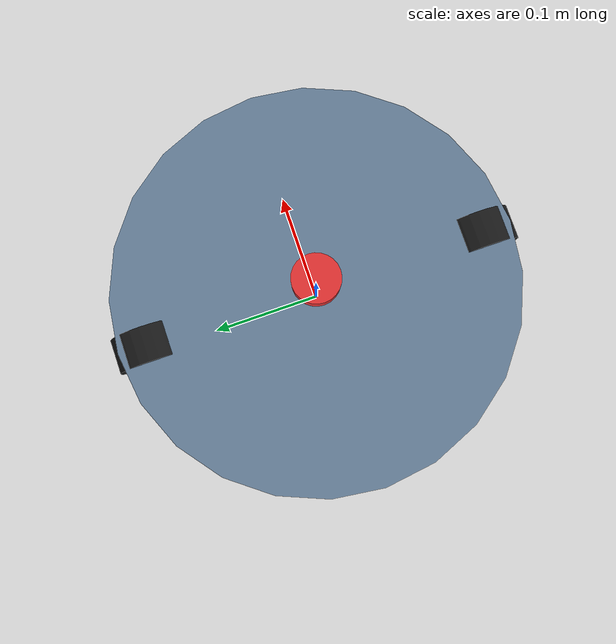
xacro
<?xml version="1.0"?>
<!--
  vacuum.urdf.xacro — Robot vacuum, 349mm round body, diff drive, 2D LiDAR.
  Frames follow REP-103: x forward, y left, z up.
  base_link origin at floor plane center; base_footprint planar frame.
-->
<robot name="vacuum" xmlns:xacro="http://www.ros.org/wiki/xacro">

  <!-- ============ Macro: wheels (used twice) ============ -->
  <xacro:macro name="vacuum_wheel" params="prefix x y">
    <link name="${prefix}_wheel">
      <visual>
        <geometry><cylinder radius="0.033" length="0.030"/></geometry>
        <origin rpy="0 ${pi/2} 0" xyz="0 0 0"/>
        <material name="black"/>
      </visual>
      <collision>
        <geometry><cylinder radius="0.033" length="0.030"/></geometry>
        <origin rpy="0 ${pi/2} 0" xyz="0 0 0"/>
      </collision>
    </link>
    <joint name="${prefix}_wheel_joint" type="continuous">
      <parent link="base_link"/>
      <child link="${prefix}_wheel"/>
      <origin xyz="${x} ${y} 0.033" rpy="0 0 0"/>
      <axis xyz="0 1 0"/>
    </joint>
  </xacro:macro>

  <!-- ============ Base footprint ============ -->
  <link name="base_footprint"/>
  <joint name="base_footprint_joint" type="fixed">
    <parent link="base_footprint"/>
    <child link="base_link"/>
    <origin xyz="0 0 0.02" rpy="0 0 0"/>
  </joint>

  <!-- ============ Body: 349mm round, ~60mm tall ============ -->
  <link name="base_link">
    <visual>
      <geometry><cylinder radius="0.1745" length="0.060"/></geometry>
      <origin rpy="0 0 0" xyz="0 0 0.03"/>
      <material name="body"/>
    </visual>
    <collision>
      <geometry><cylinder radius="0.1745" length="0.060"/></geometry>
      <origin rpy="0 0 0" xyz="0 0 0.03"/>
    </collision>
    <inertial>
      <mass value="3.0"/>
      <inertia ixx="0.02" iyy="0.02" izz="0.03" ixy="0.0" ixz="0.0" iyz="0.0"/>
      <origin xyz="0 0 0.03"/>
    </inertial>
  </link>

  <!-- ============ Drive wheels (x = +/-0.12 front-back, y = +/-0.15) ============ -->
  <xacro:vacuum_wheel prefix="left"  x="0.0"  y="0.15"/>
  <xacro:vacuum_wheel prefix="right" x="0.0"  y="-0.15"/>

  <!-- Caster (free spinning, just a sphere for sim contact) -->
  <link name="caster_wheel">
    <visual>
      <geometry><sphere radius="0.02"/></geometry>
      <origin rpy="0 0 0" xyz="0 0 0.02"/>
      <material name="black"/>
    </visual>
    <collision>
      <geometry><sphere radius="0.02"/></geometry>
      <origin rpy="0 0 0" xyz="0 0 0.02"/>
    </collision>
  </link>
  <joint name="caster_joint" type="fixed">
    <parent link="base_link"/>
    <child link="caster_wheel"/>
    <origin xyz="-0.12 0 0.0" rpy="0 0 0"/>
  </joint>

  <!-- ============ 2D LiDAR on top (base_scan) ============ -->
  <link name="base_scan">
    <visual>
      <geometry><cylinder radius="0.02" length="0.02"/></geometry>
      <origin rpy="0 0 0" xyz="0 0 0.01"/>
      <material name="lidar"/>
    </visual>
  </link>
  <joint name="base_scan_joint" type="fixed">
    <parent link="base_link"/>
    <child link="base_scan"/>
    <origin xyz="0 0 0.09" rpy="0 0 0"/>
  </joint>

  <!-- ============ Cliff / bumper placeholders (visual only, sim contacts later) ============ -->
  <link name="bumper_front"/>
  <joint name="bumper_front_joint" type="fixed">
    <parent link="base_link"/>
    <child link="bumper_front"/>
    <origin xyz="0.15 0 0.02" rpy="0 0 0"/>
  </joint>

  <!-- ============ Gazebo plugins ============ -->
  <gazebo reference="base_link">
    <material>Gazebo/DarkGrey</material>
    <mu1>0.8</mu1>
    <mu2>0.8</mu2>
  </gazebo>
  <gazebo reference="left_wheel">
    <mu1>1.0</mu1>
    <mu2>1.0</mu2>
  </gazebo>
  <gazebo reference="right_wheel">
    <mu1>1.0</mu1>
    <mu2>1.0</mu2>
  </gazebo>

  <!-- Diff drive: /cmd_vel -> wheels -->
  <gazebo>
    <plugin name="diff_drive" filename="libgazebo_ros_diff_drive.so">
      <ros>
        <remapping>cmd_vel:=cmd_vel</remapping>
        <remapping>odom:=odom</remapping>
      </ros>
      <update_rate>50</update_rate>
      <left_joint>left_wheel_joint</left_joint>
      <right_joint>right_wheel_joint</right_joint>
      <wheel_separation>0.30</wheel_separation>
      <wheel_diameter>0.066</wheel_diameter>
      <max_wheel_torque>20</max_wheel_torque>
      <max_wheel_acceleration>1.0</max_wheel_acceleration>
      <command_topic>cmd_vel</command_topic>
      <publish_odom>true</publish_odom>
      <publish_odom_tf>true</publish_odom_tf>
      <odometry_frame>odom</odometry_frame>
      <robot_base_frame>base_footprint</robot_base_frame>
    </plugin>
  </gazebo>

  <!-- Ray sensor: simulated LiDAR -> /scan -->
  <gazebo reference="base_scan">
    <sensor type="ray" name="lds">
      <pose>0 0 0 0 0 0</pose>
      <visualize>true</visualize>
      <update_rate>10</update_rate>
      <ray>
        <scan>
          <horizontal>
            <samples>360</samples>
            <resolution>1</resolution>
            <min_angle>-3.14159</min_angle>
            <max_angle>3.14159</max_angle>
          </horizontal>
        </scan>
        <range>
          <min>0.12</min>
          <max>8.0</max>
          <resolution>0.01</resolution>
        </range>
        <noise>
          <type>gaussian</type>
          <mean>0.0</mean>
          <stddev>0.01</stddev>
        </noise>
      </ray>
      <plugin name="lidar_scan" filename="libgazebo_ros_ray_sensor.so">
        <ros>
          <remapping>scan:=scan</remapping>
        </ros>
        <output_type>sensor_msgs/LaserScan</output_type>
        <frame_name>base_scan</frame_name>
      </plugin>
    </sensor>
  </gazebo>

  <!-- ============ Materials ============ -->
  <material name="black">
    <color rgba="0.1 0.1 0.1 1.0"/>
  </material>
  <material name="body">
    <color rgba="0.4 0.5 0.6 1.0"/>
  </material>
  <material name="lidar">
    <color rgba="0.9 0.2 0.2 1.0"/>
  </material>

</robot>
